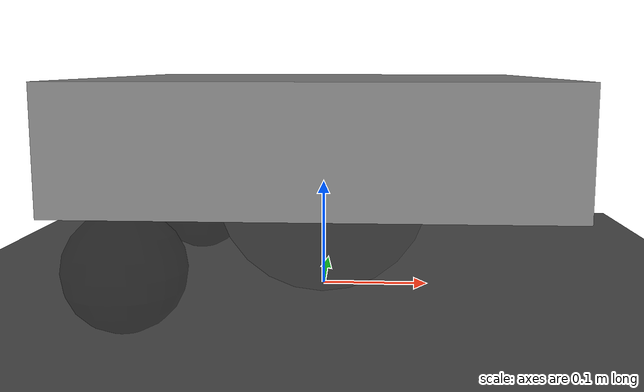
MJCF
<mujoco model="single_swerve_test">
  <compiler angle="radian"/>

  <option gravity="0 0 -9.81" timestep="0.002"/>

  <worldbody>
    <geom name="floor" type="plane" size="10 10 0.1" rgba="0.3 0.3 0.3 1"/>

    <!-- Simple box chassis with single swerve module -->
    <body name="chassis" pos="0 0 0.15">
      <freejoint name="chassis_joint"/>
      <geom name="chassis_box" type="box" size="0.2 0.2 0.05" mass="10" rgba="0.5 0.5 0.5 1"/>

      <!-- Swerve module: steer joint -> wheel body -> drive joint -> wheel -->
      <body name="steer_body" pos="0 0 -0.05">
        <joint name="steer" type="hinge" axis="0 0 1" damping="0.1"/>
        <geom name="steer_housing" type="cylinder" size="0.03 0.02" mass="0.5"
              rgba="0.4 0.4 0.4 1" contype="0" conaffinity="0"/>

        <body name="wheel_body" pos="0 0 0">
          <joint name="drive" type="hinge" axis="0 1 0"/>
          <geom name="wheel" type="cylinder" size="0.1 0.03"
                euler="1.5708 0 0" mass="1" rgba="0.2 0.2 0.2 1" friction="1.5 0.005 0.0001"/>
        </body>
      </body>

      <!-- Support casters to keep robot level (no physics) -->
      <geom name="caster_bl" type="sphere" size="0.05" pos="-0.15 0.15 -0.1"
            mass="0.1" friction="0.01 0.001 0.0001" rgba="0 0 0 0.3"/>
      <geom name="caster_br" type="sphere" size="0.05" pos="-0.15 -0.15 -0.1"
            mass="0.1" friction="0.01 0.001 0.0001" rgba="0 0 0 0.3"/>
    </body>
  </worldbody>

  <actuator>
    <motor name="steer_motor" joint="steer" gear="1" ctrllimited="true" ctrlrange="-50 50"/>
    <motor name="drive_motor" joint="drive" gear="1" ctrllimited="true" ctrlrange="-50 50"/>
  </actuator>
</mujoco>
